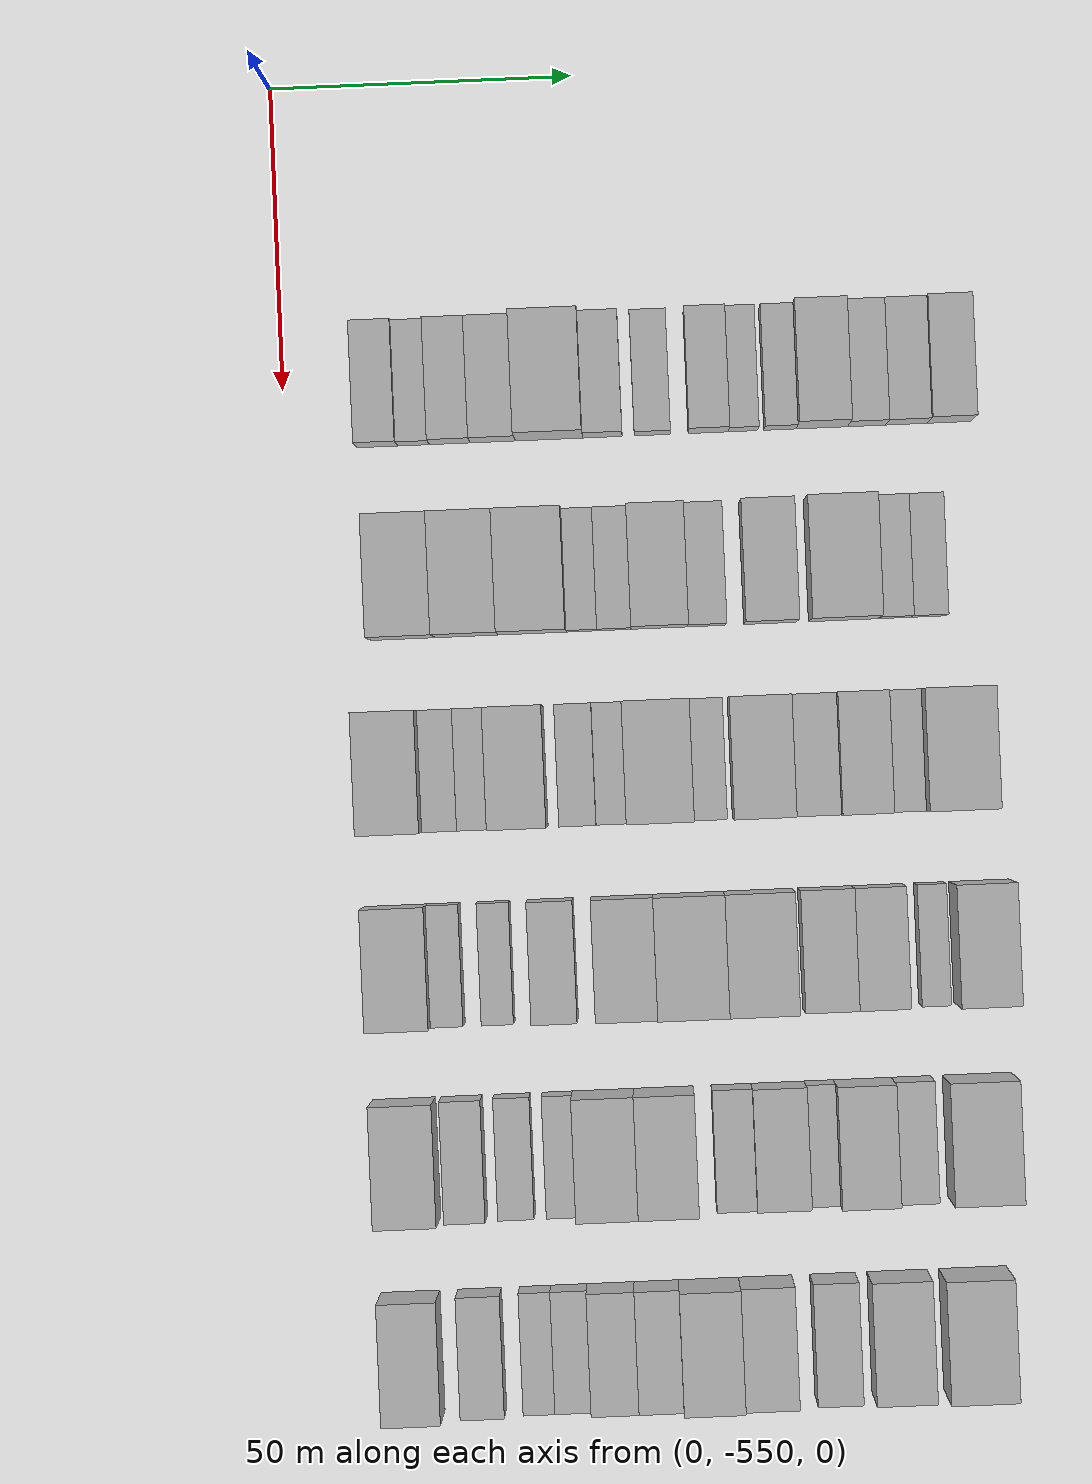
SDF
<sdf version="1.6">
 <world name="default">
  <model name="building_1">
   <static>1</static>
   <pose>50.0000 -534.6168 0 0.000000 0.000000 0.000000</pose>
   <link name="link">
    <pose>0 0 7.50 0 0 0</pose>
    <collision name="collision"><geometry><box><size>20.0000 6.7664 15.0000</size></box></geometry></collision>
    <visual name="visual">
     <cast_shadows>0</cast_shadows>
     <geometry><box><size>20.0000 6.7664 15.0000</size></box></geometry>
     <material>
      <script>
       <uri>model://HANNAS_wall/materials/scripts</uri>
       <uri>model://HANNAS_wall/materials/textures</uri>
       <name>vrc/HANNAS_wall</name>
      </script>
     </material>
    </visual>
   </link>
  </model>
  <model name="building_2">
   <static>1</static>
   <pose>50.0000 -528.6167 0 0.000000 0.000000 0.000000</pose>
   <link name="link">
    <pose>0 0 6.00 0 0 0</pose>
    <collision name="collision"><geometry><box><size>20.0000 5.2339 12.0000</size></box></geometry></collision>
    <visual name="visual">
     <cast_shadows>0</cast_shadows>
     <geometry><box><size>20.0000 5.2339 12.0000</size></box></geometry>
     <material>
      <script>
       <uri>model://HANNAS_wall/materials/scripts</uri>
       <uri>model://HANNAS_wall/materials/textures</uri>
       <name>vrc/HANNAS_wall</name>
      </script>
     </material>
    </visual>
   </link>
  </model>
  <model name="building_3">
   <static>1</static>
   <pose>50.0000 -522.6289 0 0.000000 0.000000 0.000000</pose>
   <link name="link">
    <pose>0 0 7.50 0 0 0</pose>
    <collision name="collision"><geometry><box><size>20.0000 6.7417 15.0000</size></box></geometry></collision>
    <visual name="visual">
     <cast_shadows>0</cast_shadows>
     <geometry><box><size>20.0000 6.7417 15.0000</size></box></geometry>
     <material>
      <script>
       <uri>model://HANNAS_wall/materials/scripts</uri>
       <uri>model://HANNAS_wall/materials/textures</uri>
       <name>vrc/HANNAS_wall</name>
      </script>
     </material>
    </visual>
   </link>
  </model>
  <model name="building_4">
   <static>1</static>
   <pose>50.0000 -515.5239 0 0.000000 0.000000 0.000000</pose>
   <link name="link">
    <pose>0 0 7.50 0 0 0</pose>
    <collision name="collision"><geometry><box><size>20.0000 7.4683 15.0000</size></box></geometry></collision>
    <visual name="visual">
     <cast_shadows>0</cast_shadows>
     <geometry><box><size>20.0000 7.4683 15.0000</size></box></geometry>
     <material>
      <script>
       <uri>model://HANNAS_wall/materials/scripts</uri>
       <uri>model://HANNAS_wall/materials/textures</uri>
       <name>vrc/HANNAS_wall</name>
      </script>
     </material>
    </visual>
   </link>
  </model>
  <model name="building_5">
   <static>1</static>
   <pose>50.0000 -506.2095 0 0.000000 0.000000 0.000000</pose>
   <link name="link">
    <pose>0 0 12.00 0 0 0</pose>
    <collision name="collision"><geometry><box><size>20.0000 11.1605 24.0000</size></box></geometry></collision>
    <visual name="visual">
     <cast_shadows>0</cast_shadows>
     <geometry><box><size>20.0000 11.1605 24.0000</size></box></geometry>
     <material>
      <script>
       <uri>model://HANNAS_wall/materials/scripts</uri>
       <uri>model://HANNAS_wall/materials/textures</uri>
       <name>vrc/HANNAS_wall</name>
      </script>
     </material>
    </visual>
   </link>
  </model>
  <model name="building_6">
   <static>1</static>
   <pose>50.0000 -497.3670 0 0.000000 0.000000 0.000000</pose>
   <link name="link">
    <pose>0 0 7.50 0 0 0</pose>
    <collision name="collision"><geometry><box><size>20.0000 6.5246 15.0000</size></box></geometry></collision>
    <visual name="visual">
     <cast_shadows>0</cast_shadows>
     <geometry><box><size>20.0000 6.5246 15.0000</size></box></geometry>
     <material>
      <script>
       <uri>model://HANNAS_wall/materials/scripts</uri>
       <uri>model://HANNAS_wall/materials/textures</uri>
       <name>vrc/HANNAS_wall</name>
      </script>
     </material>
    </visual>
   </link>
  </model>
  <model name="building_7">
   <static>1</static>
   <pose>50.0000 -489.1371 0 0.000000 0.000000 0.000000</pose>
   <link name="link">
    <pose>0 0 6.00 0 0 0</pose>
    <collision name="collision"><geometry><box><size>20.0000 5.9351 12.0000</size></box></geometry></collision>
    <visual name="visual">
     <cast_shadows>0</cast_shadows>
     <geometry><box><size>20.0000 5.9351 12.0000</size></box></geometry>
     <material>
      <script>
       <uri>model://HANNAS_wall/materials/scripts</uri>
       <uri>model://HANNAS_wall/materials/textures</uri>
       <name>vrc/HANNAS_wall</name>
      </script>
     </material>
    </visual>
   </link>
  </model>
  <model name="building_8">
   <static>1</static>
   <pose>50.0000 -479.8209 0 0.000000 0.000000 0.000000</pose>
   <link name="link">
    <pose>0 0 7.50 0 0 0</pose>
    <collision name="collision"><geometry><box><size>20.0000 6.6973 15.0000</size></box></geometry></collision>
    <visual name="visual">
     <cast_shadows>0</cast_shadows>
     <geometry><box><size>20.0000 6.6973 15.0000</size></box></geometry>
     <material>
      <script>
       <uri>model://HANNAS_wall/materials/scripts</uri>
       <uri>model://HANNAS_wall/materials/textures</uri>
       <name>vrc/HANNAS_wall</name>
      </script>
     </material>
    </visual>
   </link>
  </model>
  <model name="building_9">
   <static>1</static>
   <pose>50.0000 -474.0490 0 0.000000 0.000000 0.000000</pose>
   <link name="link">
    <pose>0 0 6.00 0 0 0</pose>
    <collision name="collision"><geometry><box><size>20.0000 4.8466 12.0000</size></box></geometry></collision>
    <visual name="visual">
     <cast_shadows>0</cast_shadows>
     <geometry><box><size>20.0000 4.8466 12.0000</size></box></geometry>
     <material>
      <script>
       <uri>model://HANNAS_wall/materials/scripts</uri>
       <uri>model://HANNAS_wall/materials/textures</uri>
       <name>vrc/HANNAS_wall</name>
      </script>
     </material>
    </visual>
   </link>
  </model>
  <model name="building_10">
   <static>1</static>
   <pose>50.0000 -467.9414 0 0.000000 0.000000 0.000000</pose>
   <link name="link">
    <pose>0 0 6.00 0 0 0</pose>
    <collision name="collision"><geometry><box><size>20.0000 5.3687 12.0000</size></box></geometry></collision>
    <visual name="visual">
     <cast_shadows>0</cast_shadows>
     <geometry><box><size>20.0000 5.3687 12.0000</size></box></geometry>
     <material>
      <script>
       <uri>model://HANNAS_wall/materials/scripts</uri>
       <uri>model://HANNAS_wall/materials/textures</uri>
       <name>vrc/HANNAS_wall</name>
      </script>
     </material>
    </visual>
   </link>
  </model>
  <model name="building_11">
   <static>1</static>
   <pose>50.0000 -460.9712 0 0.000000 0.000000 0.000000</pose>
   <link name="link">
    <pose>0 0 10.50 0 0 0</pose>
    <collision name="collision"><geometry><box><size>20.0000 8.5717 21.0000</size></box></geometry></collision>
    <visual name="visual">
     <cast_shadows>0</cast_shadows>
     <geometry><box><size>20.0000 8.5717 21.0000</size></box></geometry>
     <material>
      <script>
       <uri>model://HANNAS_wall/materials/scripts</uri>
       <uri>model://HANNAS_wall/materials/textures</uri>
       <name>vrc/HANNAS_wall</name>
      </script>
     </material>
    </visual>
   </link>
  </model>
  <model name="building_12">
   <static>1</static>
   <pose>50.0000 -453.5250 0 0.000000 0.000000 0.000000</pose>
   <link name="link">
    <pose>0 0 7.50 0 0 0</pose>
    <collision name="collision"><geometry><box><size>20.0000 6.3207 15.0000</size></box></geometry></collision>
    <visual name="visual">
     <cast_shadows>0</cast_shadows>
     <geometry><box><size>20.0000 6.3207 15.0000</size></box></geometry>
     <material>
      <script>
       <uri>model://HANNAS_wall/materials/scripts</uri>
       <uri>model://HANNAS_wall/materials/textures</uri>
       <name>vrc/HANNAS_wall</name>
      </script>
     </material>
    </visual>
   </link>
  </model>
  <model name="building_13">
   <static>1</static>
   <pose>50.0000 -446.9261 0 0.000000 0.000000 0.000000</pose>
   <link name="link">
    <pose>0 0 7.50 0 0 0</pose>
    <collision name="collision"><geometry><box><size>20.0000 6.8771 15.0000</size></box></geometry></collision>
    <visual name="visual">
     <cast_shadows>0</cast_shadows>
     <geometry><box><size>20.0000 6.8771 15.0000</size></box></geometry>
     <material>
      <script>
       <uri>model://HANNAS_wall/materials/scripts</uri>
       <uri>model://HANNAS_wall/materials/textures</uri>
       <name>vrc/HANNAS_wall</name>
      </script>
     </material>
    </visual>
   </link>
  </model>
  <model name="building_14">
   <static>1</static>
   <pose>50.0000 -439.8316 0 0.000000 0.000000 0.000000</pose>
   <link name="link">
    <pose>0 0 9.00 0 0 0</pose>
    <collision name="collision"><geometry><box><size>20.0000 7.3120 18.0000</size></box></geometry></collision>
    <visual name="visual">
     <cast_shadows>0</cast_shadows>
     <geometry><box><size>20.0000 7.3120 18.0000</size></box></geometry>
     <material>
      <script>
       <uri>model://HANNAS_wall/materials/scripts</uri>
       <uri>model://HANNAS_wall/materials/textures</uri>
       <name>vrc/HANNAS_wall</name>
      </script>
     </material>
    </visual>
   </link>
  </model>
  <model name="building_113">
   <static>1</static>
   <pose>82.0000 -531.7227 0 0.000000 0.000000 0.000000</pose>
   <link name="link">
    <pose>0 0 12.00 0 0 0</pose>
    <collision name="collision"><geometry><box><size>20.0000 10.5547 24.0000</size></box></geometry></collision>
    <visual name="visual">
     <cast_shadows>0</cast_shadows>
     <geometry><box><size>20.0000 10.5547 24.0000</size></box></geometry>
     <material>
      <script>
       <uri>model://HANNAS_wall/materials/scripts</uri>
       <uri>model://HANNAS_wall/materials/textures</uri>
       <name>vrc/HANNAS_wall</name>
      </script>
     </material>
    </visual>
   </link>
  </model>
  <model name="building_114">
   <static>1</static>
   <pose>82.0000 -521.1685 0 0.000000 0.000000 0.000000</pose>
   <link name="link">
    <pose>0 0 12.00 0 0 0</pose>
    <collision name="collision"><geometry><box><size>20.0000 10.5536 24.0000</size></box></geometry></collision>
    <visual name="visual">
     <cast_shadows>0</cast_shadows>
     <geometry><box><size>20.0000 10.5536 24.0000</size></box></geometry>
     <material>
      <script>
       <uri>model://HANNAS_wall/materials/scripts</uri>
       <uri>model://HANNAS_wall/materials/textures</uri>
       <name>vrc/HANNAS_wall</name>
      </script>
     </material>
    </visual>
   </link>
  </model>
  <model name="building_115">
   <static>1</static>
   <pose>82.0000 -510.2709 0 0.000000 0.000000 0.000000</pose>
   <link name="link">
    <pose>0 0 12.00 0 0 0</pose>
    <collision name="collision"><geometry><box><size>20.0000 11.2416 24.0000</size></box></geometry></collision>
    <visual name="visual">
     <cast_shadows>0</cast_shadows>
     <geometry><box><size>20.0000 11.2416 24.0000</size></box></geometry>
     <material>
      <script>
       <uri>model://HANNAS_wall/materials/scripts</uri>
       <uri>model://HANNAS_wall/materials/textures</uri>
       <name>vrc/HANNAS_wall</name>
      </script>
     </material>
    </visual>
   </link>
  </model>
  <model name="building_116">
   <static>1</static>
   <pose>82.0000 -502.1303 0 0.000000 0.000000 0.000000</pose>
   <link name="link">
    <pose>0 0 6.00 0 0 0</pose>
    <collision name="collision"><geometry><box><size>20.0000 5.0396 12.0000</size></box></geometry></collision>
    <visual name="visual">
     <cast_shadows>0</cast_shadows>
     <geometry><box><size>20.0000 5.0396 12.0000</size></box></geometry>
     <material>
      <script>
       <uri>model://HANNAS_wall/materials/scripts</uri>
       <uri>model://HANNAS_wall/materials/textures</uri>
       <name>vrc/HANNAS_wall</name>
      </script>
     </material>
    </visual>
   </link>
  </model>
  <model name="building_117">
   <static>1</static>
   <pose>82.0000 -496.8049 0 0.000000 0.000000 0.000000</pose>
   <link name="link">
    <pose>0 0 6.00 0 0 0</pose>
    <collision name="collision"><geometry><box><size>20.0000 5.6114 12.0000</size></box></geometry></collision>
    <visual name="visual">
     <cast_shadows>0</cast_shadows>
     <geometry><box><size>20.0000 5.6114 12.0000</size></box></geometry>
     <material>
      <script>
       <uri>model://HANNAS_wall/materials/scripts</uri>
       <uri>model://HANNAS_wall/materials/textures</uri>
       <name>vrc/HANNAS_wall</name>
      </script>
     </material>
    </visual>
   </link>
  </model>
  <model name="building_118">
   <static>1</static>
   <pose>82.0000 -489.3144 0 0.000000 0.000000 0.000000</pose>
   <link name="link">
    <pose>0 0 10.50 0 0 0</pose>
    <collision name="collision"><geometry><box><size>20.0000 9.3695 21.0000</size></box></geometry></collision>
    <visual name="visual">
     <cast_shadows>0</cast_shadows>
     <geometry><box><size>20.0000 9.3695 21.0000</size></box></geometry>
     <material>
      <script>
       <uri>model://HANNAS_wall/materials/scripts</uri>
       <uri>model://HANNAS_wall/materials/textures</uri>
       <name>vrc/HANNAS_wall</name>
      </script>
     </material>
    </visual>
   </link>
  </model>
  <model name="building_119">
   <static>1</static>
   <pose>82.0000 -481.4754 0 0.000000 0.000000 0.000000</pose>
   <link name="link">
    <pose>0 0 7.50 0 0 0</pose>
    <collision name="collision"><geometry><box><size>20.0000 6.3085 15.0000</size></box></geometry></collision>
    <visual name="visual">
     <cast_shadows>0</cast_shadows>
     <geometry><box><size>20.0000 6.3085 15.0000</size></box></geometry>
     <material>
      <script>
       <uri>model://HANNAS_wall/materials/scripts</uri>
       <uri>model://HANNAS_wall/materials/textures</uri>
       <name>vrc/HANNAS_wall</name>
      </script>
     </material>
    </visual>
   </link>
  </model>
  <model name="building_120">
   <static>1</static>
   <pose>82.0000 -470.9558 0 0.000000 0.000000 0.000000</pose>
   <link name="link">
    <pose>0 0 10.50 0 0 0</pose>
    <collision name="collision"><geometry><box><size>20.0000 8.7308 21.0000</size></box></geometry></collision>
    <visual name="visual">
     <cast_shadows>0</cast_shadows>
     <geometry><box><size>20.0000 8.7308 21.0000</size></box></geometry>
     <material>
      <script>
       <uri>model://HANNAS_wall/materials/scripts</uri>
       <uri>model://HANNAS_wall/materials/textures</uri>
       <name>vrc/HANNAS_wall</name>
      </script>
     </material>
    </visual>
   </link>
  </model>
  <model name="building_121">
   <static>1</static>
   <pose>82.0000 -458.8584 0 0.000000 0.000000 0.000000</pose>
   <link name="link">
    <pose>0 0 12.00 0 0 0</pose>
    <collision name="collision"><geometry><box><size>20.0000 11.4640 24.0000</size></box></geometry></collision>
    <visual name="visual">
     <cast_shadows>0</cast_shadows>
     <geometry><box><size>20.0000 11.4640 24.0000</size></box></geometry>
     <material>
      <script>
       <uri>model://HANNAS_wall/materials/scripts</uri>
       <uri>model://HANNAS_wall/materials/textures</uri>
       <name>vrc/HANNAS_wall</name>
      </script>
     </material>
    </visual>
   </link>
  </model>
  <model name="building_122">
   <static>1</static>
   <pose>82.0000 -450.3639 0 0.000000 0.000000 0.000000</pose>
   <link name="link">
    <pose>0 0 6.00 0 0 0</pose>
    <collision name="collision"><geometry><box><size>20.0000 5.5251 12.0000</size></box></geometry></collision>
    <visual name="visual">
     <cast_shadows>0</cast_shadows>
     <geometry><box><size>20.0000 5.5251 12.0000</size></box></geometry>
     <material>
      <script>
       <uri>model://HANNAS_wall/materials/scripts</uri>
       <uri>model://HANNAS_wall/materials/textures</uri>
       <name>vrc/HANNAS_wall</name>
      </script>
     </material>
    </visual>
   </link>
  </model>
  <model name="building_123">
   <static>1</static>
   <pose>82.0000 -444.7693 0 0.000000 0.000000 0.000000</pose>
   <link name="link">
    <pose>0 0 6.00 0 0 0</pose>
    <collision name="collision"><geometry><box><size>20.0000 5.6641 12.0000</size></box></geometry></collision>
    <visual name="visual">
     <cast_shadows>0</cast_shadows>
     <geometry><box><size>20.0000 5.6641 12.0000</size></box></geometry>
     <material>
      <script>
       <uri>model://HANNAS_wall/materials/scripts</uri>
       <uri>model://HANNAS_wall/materials/textures</uri>
       <name>vrc/HANNAS_wall</name>
      </script>
     </material>
    </visual>
   </link>
  </model>
  <model name="building_238">
   <static>1</static>
   <pose>114.0000 -534.8108 0 0.000000 0.000000 0.000000</pose>
   <link name="link">
    <pose>0 0 12.00 0 0 0</pose>
    <collision name="collision"><geometry><box><size>20.0000 10.3784 24.0000</size></box></geometry></collision>
    <visual name="visual">
     <cast_shadows>0</cast_shadows>
     <geometry><box><size>20.0000 10.3784 24.0000</size></box></geometry>
     <material>
      <script>
       <uri>model://HANNAS_wall/materials/scripts</uri>
       <uri>model://HANNAS_wall/materials/textures</uri>
       <name>vrc/HANNAS_wall</name>
      </script>
     </material>
    </visual>
   </link>
  </model>
  <model name="building_239">
   <static>1</static>
   <pose>114.0000 -526.7624 0 0.000000 0.000000 0.000000</pose>
   <link name="link">
    <pose>0 0 6.00 0 0 0</pose>
    <collision name="collision"><geometry><box><size>20.0000 5.7185 12.0000</size></box></geometry></collision>
    <visual name="visual">
     <cast_shadows>0</cast_shadows>
     <geometry><box><size>20.0000 5.7185 12.0000</size></box></geometry>
     <material>
      <script>
       <uri>model://HANNAS_wall/materials/scripts</uri>
       <uri>model://HANNAS_wall/materials/textures</uri>
       <name>vrc/HANNAS_wall</name>
      </script>
     </material>
    </visual>
   </link>
  </model>
  <model name="building_240">
   <static>1</static>
   <pose>114.0000 -521.3379 0 0.000000 0.000000 0.000000</pose>
   <link name="link">
    <pose>0 0 6.00 0 0 0</pose>
    <collision name="collision"><geometry><box><size>20.0000 5.1304 12.0000</size></box></geometry></collision>
    <visual name="visual">
     <cast_shadows>0</cast_shadows>
     <geometry><box><size>20.0000 5.1304 12.0000</size></box></geometry>
     <material>
      <script>
       <uri>model://HANNAS_wall/materials/scripts</uri>
       <uri>model://HANNAS_wall/materials/textures</uri>
       <name>vrc/HANNAS_wall</name>
      </script>
     </material>
    </visual>
   </link>
  </model>
  <model name="building_241">
   <static>1</static>
   <pose>114.0000 -513.9491 0 0.000000 0.000000 0.000000</pose>
   <link name="link">
    <pose>0 0 10.50 0 0 0</pose>
    <collision name="collision"><geometry><box><size>20.0000 9.6472 21.0000</size></box></geometry></collision>
    <visual name="visual">
     <cast_shadows>0</cast_shadows>
     <geometry><box><size>20.0000 9.6472 21.0000</size></box></geometry>
     <material>
      <script>
       <uri>model://HANNAS_wall/materials/scripts</uri>
       <uri>model://HANNAS_wall/materials/textures</uri>
       <name>vrc/HANNAS_wall</name>
      </script>
     </material>
    </visual>
   </link>
  </model>
  <model name="building_242">
   <static>1</static>
   <pose>114.0000 -504.1001 0 0.000000 0.000000 0.000000</pose>
   <link name="link">
    <pose>0 0 7.50 0 0 0</pose>
    <collision name="collision"><geometry><box><size>20.0000 6.0510 15.0000</size></box></geometry></collision>
    <visual name="visual">
     <cast_shadows>0</cast_shadows>
     <geometry><box><size>20.0000 6.0510 15.0000</size></box></geometry>
     <material>
      <script>
       <uri>model://HANNAS_wall/materials/scripts</uri>
       <uri>model://HANNAS_wall/materials/textures</uri>
       <name>vrc/HANNAS_wall</name>
      </script>
     </material>
    </visual>
   </link>
  </model>
  <model name="building_243">
   <static>1</static>
   <pose>114.0000 -498.5882 0 0.000000 0.000000 0.000000</pose>
   <link name="link">
    <pose>0 0 6.00 0 0 0</pose>
    <collision name="collision"><geometry><box><size>20.0000 4.9729 12.0000</size></box></geometry></collision>
    <visual name="visual">
     <cast_shadows>0</cast_shadows>
     <geometry><box><size>20.0000 4.9729 12.0000</size></box></geometry>
     <material>
      <script>
       <uri>model://HANNAS_wall/materials/scripts</uri>
       <uri>model://HANNAS_wall/materials/textures</uri>
       <name>vrc/HANNAS_wall</name>
      </script>
     </material>
    </visual>
   </link>
  </model>
  <model name="building_244">
   <static>1</static>
   <pose>114.0000 -490.5929 0 0.000000 0.000000 0.000000</pose>
   <link name="link">
    <pose>0 0 12.00 0 0 0</pose>
    <collision name="collision"><geometry><box><size>20.0000 11.0177 24.0000</size></box></geometry></collision>
    <visual name="visual">
     <cast_shadows>0</cast_shadows>
     <geometry><box><size>20.0000 11.0177 24.0000</size></box></geometry>
     <material>
      <script>
       <uri>model://HANNAS_wall/materials/scripts</uri>
       <uri>model://HANNAS_wall/materials/textures</uri>
       <name>vrc/HANNAS_wall</name>
      </script>
     </material>
    </visual>
   </link>
  </model>
  <model name="building_245">
   <static>1</static>
   <pose>114.0000 -482.3279 0 0.000000 0.000000 0.000000</pose>
   <link name="link">
    <pose>0 0 6.00 0 0 0</pose>
    <collision name="collision"><geometry><box><size>20.0000 5.5122 12.0000</size></box></geometry></collision>
    <visual name="visual">
     <cast_shadows>0</cast_shadows>
     <geometry><box><size>20.0000 5.5122 12.0000</size></box></geometry>
     <material>
      <script>
       <uri>model://HANNAS_wall/materials/scripts</uri>
       <uri>model://HANNAS_wall/materials/textures</uri>
       <name>vrc/HANNAS_wall</name>
      </script>
     </material>
    </visual>
   </link>
  </model>
  <model name="building_246">
   <static>1</static>
   <pose>114.0000 -473.4891 0 0.000000 0.000000 0.000000</pose>
   <link name="link">
    <pose>0 0 10.50 0 0 0</pose>
    <collision name="collision"><geometry><box><size>20.0000 10.1655 21.0000</size></box></geometry></collision>
    <visual name="visual">
     <cast_shadows>0</cast_shadows>
     <geometry><box><size>20.0000 10.1655 21.0000</size></box></geometry>
     <material>
      <script>
       <uri>model://HANNAS_wall/materials/scripts</uri>
       <uri>model://HANNAS_wall/materials/textures</uri>
       <name>vrc/HANNAS_wall</name>
      </script>
     </material>
    </visual>
   </link>
  </model>
  <model name="building_247">
   <static>1</static>
   <pose>114.0000 -464.6947 0 0.000000 0.000000 0.000000</pose>
   <link name="link">
    <pose>0 0 7.50 0 0 0</pose>
    <collision name="collision"><geometry><box><size>20.0000 7.4234 15.0000</size></box></geometry></collision>
    <visual name="visual">
     <cast_shadows>0</cast_shadows>
     <geometry><box><size>20.0000 7.4234 15.0000</size></box></geometry>
     <material>
      <script>
       <uri>model://HANNAS_wall/materials/scripts</uri>
       <uri>model://HANNAS_wall/materials/textures</uri>
       <name>vrc/HANNAS_wall</name>
      </script>
     </material>
    </visual>
   </link>
  </model>
  <model name="building_248">
   <static>1</static>
   <pose>114.0000 -456.7789 0 0.000000 0.000000 0.000000</pose>
   <link name="link">
    <pose>0 0 10.50 0 0 0</pose>
    <collision name="collision"><geometry><box><size>20.0000 8.4082 21.0000</size></box></geometry></collision>
    <visual name="visual">
     <cast_shadows>0</cast_shadows>
     <geometry><box><size>20.0000 8.4082 21.0000</size></box></geometry>
     <material>
      <script>
       <uri>model://HANNAS_wall/materials/scripts</uri>
       <uri>model://HANNAS_wall/materials/textures</uri>
       <name>vrc/HANNAS_wall</name>
      </script>
     </material>
    </visual>
   </link>
  </model>
  <model name="building_249">
   <static>1</static>
   <pose>114.0000 -449.7888 0 0.000000 0.000000 0.000000</pose>
   <link name="link">
    <pose>0 0 6.00 0 0 0</pose>
    <collision name="collision"><geometry><box><size>20.0000 5.5721 12.0000</size></box></geometry></collision>
    <visual name="visual">
     <cast_shadows>0</cast_shadows>
     <geometry><box><size>20.0000 5.5721 12.0000</size></box></geometry>
     <material>
      <script>
       <uri>model://HANNAS_wall/materials/scripts</uri>
       <uri>model://HANNAS_wall/materials/textures</uri>
       <name>vrc/HANNAS_wall</name>
      </script>
     </material>
    </visual>
   </link>
  </model>
  <model name="building_250">
   <static>1</static>
   <pose>114.0000 -441.1961 0 0.000000 0.000000 0.000000</pose>
   <link name="link">
    <pose>0 0 12.00 0 0 0</pose>
    <collision name="collision"><geometry><box><size>20.0000 11.6133 24.0000</size></box></geometry></collision>
    <visual name="visual">
     <cast_shadows>0</cast_shadows>
     <geometry><box><size>20.0000 11.6133 24.0000</size></box></geometry>
     <material>
      <script>
       <uri>model://HANNAS_wall/materials/scripts</uri>
       <uri>model://HANNAS_wall/materials/textures</uri>
       <name>vrc/HANNAS_wall</name>
      </script>
     </material>
    </visual>
   </link>
  </model>
  <model name="building_361">
   <static>1</static>
   <pose>146.0000 -534.7882 0 0.000000 0.000000 0.000000</pose>
   <link name="link">
    <pose>0 0 10.50 0 0 0</pose>
    <collision name="collision"><geometry><box><size>20.0000 10.4236 21.0000</size></box></geometry></collision>
    <visual name="visual">
     <cast_shadows>0</cast_shadows>
     <geometry><box><size>20.0000 10.4236 21.0000</size></box></geometry>
     <material>
      <script>
       <uri>model://HANNAS_wall/materials/scripts</uri>
       <uri>model://HANNAS_wall/materials/textures</uri>
       <name>vrc/HANNAS_wall</name>
      </script>
     </material>
    </visual>
   </link>
  </model>
  <model name="building_362">
   <static>1</static>
   <pose>146.0000 -526.9096 0 0.000000 0.000000 0.000000</pose>
   <link name="link">
    <pose>0 0 6.00 0 0 0</pose>
    <collision name="collision"><geometry><box><size>20.0000 5.3336 12.0000</size></box></geometry></collision>
    <visual name="visual">
     <cast_shadows>0</cast_shadows>
     <geometry><box><size>20.0000 5.3336 12.0000</size></box></geometry>
     <material>
      <script>
       <uri>model://HANNAS_wall/materials/scripts</uri>
       <uri>model://HANNAS_wall/materials/textures</uri>
       <name>vrc/HANNAS_wall</name>
      </script>
     </material>
    </visual>
   </link>
  </model>
  <model name="building_363">
   <static>1</static>
   <pose>146.0000 -518.6073 0 0.000000 0.000000 0.000000</pose>
   <link name="link">
    <pose>0 0 6.00 0 0 0</pose>
    <collision name="collision"><geometry><box><size>20.0000 5.2710 12.0000</size></box></geometry></collision>
    <visual name="visual">
     <cast_shadows>0</cast_shadows>
     <geometry><box><size>20.0000 5.2710 12.0000</size></box></geometry>
     <material>
      <script>
       <uri>model://HANNAS_wall/materials/scripts</uri>
       <uri>model://HANNAS_wall/materials/textures</uri>
       <name>vrc/HANNAS_wall</name>
      </script>
     </material>
    </visual>
   </link>
  </model>
  <model name="building_364">
   <static>1</static>
   <pose>146.0000 -509.2248 0 0.000000 0.000000 0.000000</pose>
   <link name="link">
    <pose>0 0 9.00 0 0 0</pose>
    <collision name="collision"><geometry><box><size>20.0000 7.4940 18.0000</size></box></geometry></collision>
    <visual name="visual">
     <cast_shadows>0</cast_shadows>
     <geometry><box><size>20.0000 7.4940 18.0000</size></box></geometry>
     <material>
      <script>
       <uri>model://HANNAS_wall/materials/scripts</uri>
       <uri>model://HANNAS_wall/materials/textures</uri>
       <name>vrc/HANNAS_wall</name>
      </script>
     </material>
    </visual>
   </link>
  </model>
  <model name="building_365">
   <static>1</static>
   <pose>146.0000 -497.4205 0 0.000000 0.000000 0.000000</pose>
   <link name="link">
    <pose>0 0 10.50 0 0 0</pose>
    <collision name="collision"><geometry><box><size>20.0000 10.1145 21.0000</size></box></geometry></collision>
    <visual name="visual">
     <cast_shadows>0</cast_shadows>
     <geometry><box><size>20.0000 10.1145 21.0000</size></box></geometry>
     <material>
      <script>
       <uri>model://HANNAS_wall/materials/scripts</uri>
       <uri>model://HANNAS_wall/materials/textures</uri>
       <name>vrc/HANNAS_wall</name>
      </script>
     </material>
    </visual>
   </link>
  </model>
  <model name="building_366">
   <static>1</static>
   <pose>146.0000 -486.5236 0 0.000000 0.000000 0.000000</pose>
   <link name="link">
    <pose>0 0 12.00 0 0 0</pose>
    <collision name="collision"><geometry><box><size>20.0000 11.6794 24.0000</size></box></geometry></collision>
    <visual name="visual">
     <cast_shadows>0</cast_shadows>
     <geometry><box><size>20.0000 11.6794 24.0000</size></box></geometry>
     <material>
      <script>
       <uri>model://HANNAS_wall/materials/scripts</uri>
       <uri>model://HANNAS_wall/materials/textures</uri>
       <name>vrc/HANNAS_wall</name>
      </script>
     </material>
    </visual>
   </link>
  </model>
  <model name="building_367">
   <static>1</static>
   <pose>146.0000 -474.9868 0 0.000000 0.000000 0.000000</pose>
   <link name="link">
    <pose>0 0 12.00 0 0 0</pose>
    <collision name="collision"><geometry><box><size>20.0000 11.3943 24.0000</size></box></geometry></collision>
    <visual name="visual">
     <cast_shadows>0</cast_shadows>
     <geometry><box><size>20.0000 11.3943 24.0000</size></box></geometry>
     <material>
      <script>
       <uri>model://HANNAS_wall/materials/scripts</uri>
       <uri>model://HANNAS_wall/materials/textures</uri>
       <name>vrc/HANNAS_wall</name>
      </script>
     </material>
    </visual>
   </link>
  </model>
  <model name="building_368">
   <static>1</static>
   <pose>146.0000 -463.8695 0 0.000000 0.000000 0.000000</pose>
   <link name="link">
    <pose>0 0 9.00 0 0 0</pose>
    <collision name="collision"><geometry><box><size>20.0000 8.8402 18.0000</size></box></geometry></collision>
    <visual name="visual">
     <cast_shadows>0</cast_shadows>
     <geometry><box><size>20.0000 8.8402 18.0000</size></box></geometry>
     <material>
      <script>
       <uri>model://HANNAS_wall/materials/scripts</uri>
       <uri>model://HANNAS_wall/materials/textures</uri>
       <name>vrc/HANNAS_wall</name>
      </script>
     </material>
    </visual>
   </link>
  </model>
  <model name="building_369">
   <static>1</static>
   <pose>146.0000 -455.2530 0 0.000000 0.000000 0.000000</pose>
   <link name="link">
    <pose>0 0 9.00 0 0 0</pose>
    <collision name="collision"><geometry><box><size>20.0000 8.3929 18.0000</size></box></geometry></collision>
    <visual name="visual">
     <cast_shadows>0</cast_shadows>
     <geometry><box><size>20.0000 8.3929 18.0000</size></box></geometry>
     <material>
      <script>
       <uri>model://HANNAS_wall/materials/scripts</uri>
       <uri>model://HANNAS_wall/materials/textures</uri>
       <name>vrc/HANNAS_wall</name>
      </script>
     </material>
    </visual>
   </link>
  </model>
  <model name="building_370">
   <static>1</static>
   <pose>146.0000 -446.6479 0 0.000000 0.000000 0.000000</pose>
   <link name="link">
    <pose>0 0 6.00 0 0 0</pose>
    <collision name="collision"><geometry><box><size>20.0000 4.8174 12.0000</size></box></geometry></collision>
    <visual name="visual">
     <cast_shadows>0</cast_shadows>
     <geometry><box><size>20.0000 4.8174 12.0000</size></box></geometry>
     <material>
      <script>
       <uri>model://HANNAS_wall/materials/scripts</uri>
       <uri>model://HANNAS_wall/materials/textures</uri>
       <name>vrc/HANNAS_wall</name>
      </script>
     </material>
    </visual>
   </link>
  </model>
  <model name="building_371">
   <static>1</static>
   <pose>146.0000 -438.2856 0 0.000000 0.000000 0.000000</pose>
   <link name="link">
    <pose>0 0 12.00 0 0 0</pose>
    <collision name="collision"><geometry><box><size>20.0000 9.9073 24.0000</size></box></geometry></collision>
    <visual name="visual">
     <cast_shadows>0</cast_shadows>
     <geometry><box><size>20.0000 9.9073 24.0000</size></box></geometry>
     <material>
      <script>
       <uri>model://HANNAS_wall/materials/scripts</uri>
       <uri>model://HANNAS_wall/materials/textures</uri>
       <name>vrc/HANNAS_wall</name>
      </script>
     </material>
    </visual>
   </link>
  </model>
  <model name="building_484">
   <static>1</static>
   <pose>178.0000 -534.8293 0 0.000000 0.000000 0.000000</pose>
   <link name="link">
    <pose>0 0 10.50 0 0 0</pose>
    <collision name="collision"><geometry><box><size>20.0000 10.3414 21.0000</size></box></geometry></collision>
    <visual name="visual">
     <cast_shadows>0</cast_shadows>
     <geometry><box><size>20.0000 10.3414 21.0000</size></box></geometry>
     <material>
      <script>
       <uri>model://HANNAS_wall/materials/scripts</uri>
       <uri>model://HANNAS_wall/materials/textures</uri>
       <name>vrc/HANNAS_wall</name>
      </script>
     </material>
    </visual>
   </link>
  </model>
  <model name="building_485">
   <static>1</static>
   <pose>178.0000 -525.2825 0 0.000000 0.000000 0.000000</pose>
   <link name="link">
    <pose>0 0 7.50 0 0 0</pose>
    <collision name="collision"><geometry><box><size>20.0000 6.7522 15.0000</size></box></geometry></collision>
    <visual name="visual">
     <cast_shadows>0</cast_shadows>
     <geometry><box><size>20.0000 6.7522 15.0000</size></box></geometry>
     <material>
      <script>
       <uri>model://HANNAS_wall/materials/scripts</uri>
       <uri>model://HANNAS_wall/materials/textures</uri>
       <name>vrc/HANNAS_wall</name>
      </script>
     </material>
    </visual>
   </link>
  </model>
  <model name="building_486">
   <static>1</static>
   <pose>178.0000 -516.9330 0 0.000000 0.000000 0.000000</pose>
   <link name="link">
    <pose>0 0 6.00 0 0 0</pose>
    <collision name="collision"><geometry><box><size>20.0000 5.9466 12.0000</size></box></geometry></collision>
    <visual name="visual">
     <cast_shadows>0</cast_shadows>
     <geometry><box><size>20.0000 5.9466 12.0000</size></box></geometry>
     <material>
      <script>
       <uri>model://HANNAS_wall/materials/scripts</uri>
       <uri>model://HANNAS_wall/materials/textures</uri>
       <name>vrc/HANNAS_wall</name>
      </script>
     </material>
    </visual>
   </link>
  </model>
  <model name="building_487">
   <static>1</static>
   <pose>178.0000 -509.4735 0 0.000000 0.000000 0.000000</pose>
   <link name="link">
    <pose>0 0 6.00 0 0 0</pose>
    <collision name="collision"><geometry><box><size>20.0000 4.9723 12.0000</size></box></geometry></collision>
    <visual name="visual">
     <cast_shadows>0</cast_shadows>
     <geometry><box><size>20.0000 4.9723 12.0000</size></box></geometry>
     <material>
      <script>
       <uri>model://HANNAS_wall/materials/scripts</uri>
       <uri>model://HANNAS_wall/materials/textures</uri>
       <name>vrc/HANNAS_wall</name>
      </script>
     </material>
    </visual>
   </link>
  </model>
  <model name="building_488">
   <static>1</static>
   <pose>178.0000 -501.9468 0 0.000000 0.000000 0.000000</pose>
   <link name="link">
    <pose>0 0 12.00 0 0 0</pose>
    <collision name="collision"><geometry><box><size>20.0000 10.0813 24.0000</size></box></geometry></collision>
    <visual name="visual">
     <cast_shadows>0</cast_shadows>
     <geometry><box><size>20.0000 10.0813 24.0000</size></box></geometry>
     <material>
      <script>
       <uri>model://HANNAS_wall/materials/scripts</uri>
       <uri>model://HANNAS_wall/materials/textures</uri>
       <name>vrc/HANNAS_wall</name>
      </script>
     </material>
    </visual>
   </link>
  </model>
  <model name="building_489">
   <static>1</static>
   <pose>178.0000 -491.9603 0 0.000000 0.000000 0.000000</pose>
   <link name="link">
    <pose>0 0 12.00 0 0 0</pose>
    <collision name="collision"><geometry><box><size>20.0000 9.8917 24.0000</size></box></geometry></collision>
    <visual name="visual">
     <cast_shadows>0</cast_shadows>
     <geometry><box><size>20.0000 9.8917 24.0000</size></box></geometry>
     <material>
      <script>
       <uri>model://HANNAS_wall/materials/scripts</uri>
       <uri>model://HANNAS_wall/materials/textures</uri>
       <name>vrc/HANNAS_wall</name>
      </script>
     </material>
    </visual>
   </link>
  </model>
  <model name="building_490">
   <static>1</static>
   <pose>178.0000 -480.7331 0 0.000000 0.000000 0.000000</pose>
   <link name="link">
    <pose>0 0 7.50 0 0 0</pose>
    <collision name="collision"><geometry><box><size>20.0000 6.5625 15.0000</size></box></geometry></collision>
    <visual name="visual">
     <cast_shadows>0</cast_shadows>
     <geometry><box><size>20.0000 6.5625 15.0000</size></box></geometry>
     <material>
      <script>
       <uri>model://HANNAS_wall/materials/scripts</uri>
       <uri>model://HANNAS_wall/materials/textures</uri>
       <name>vrc/HANNAS_wall</name>
      </script>
     </material>
    </visual>
   </link>
  </model>
  <model name="building_491">
   <static>1</static>
   <pose>178.0000 -473.0125 0 0.000000 0.000000 0.000000</pose>
   <link name="link">
    <pose>0 0 9.00 0 0 0</pose>
    <collision name="collision"><geometry><box><size>20.0000 8.8787 18.0000</size></box></geometry></collision>
    <visual name="visual">
     <cast_shadows>0</cast_shadows>
     <geometry><box><size>20.0000 8.8787 18.0000</size></box></geometry>
     <material>
      <script>
       <uri>model://HANNAS_wall/materials/scripts</uri>
       <uri>model://HANNAS_wall/materials/textures</uri>
       <name>vrc/HANNAS_wall</name>
      </script>
     </material>
    </visual>
   </link>
  </model>
  <model name="building_492">
   <static>1</static>
   <pose>178.0000 -466.1652 0 0.000000 0.000000 0.000000</pose>
   <link name="link">
    <pose>0 0 6.00 0 0 0</pose>
    <collision name="collision"><geometry><box><size>20.0000 4.8160 12.0000</size></box></geometry></collision>
    <visual name="visual">
     <cast_shadows>0</cast_shadows>
     <geometry><box><size>20.0000 4.8160 12.0000</size></box></geometry>
     <material>
      <script>
       <uri>model://HANNAS_wall/materials/scripts</uri>
       <uri>model://HANNAS_wall/materials/textures</uri>
       <name>vrc/HANNAS_wall</name>
      </script>
     </material>
    </visual>
   </link>
  </model>
  <model name="building_493">
   <static>1</static>
   <pose>178.0000 -458.9534 0 0.000000 0.000000 0.000000</pose>
   <link name="link">
    <pose>0 0 10.50 0 0 0</pose>
    <collision name="collision"><geometry><box><size>20.0000 9.6075 21.0000</size></box></geometry></collision>
    <visual name="visual">
     <cast_shadows>0</cast_shadows>
     <geometry><box><size>20.0000 9.6075 21.0000</size></box></geometry>
     <material>
      <script>
       <uri>model://HANNAS_wall/materials/scripts</uri>
       <uri>model://HANNAS_wall/materials/textures</uri>
       <name>vrc/HANNAS_wall</name>
      </script>
     </material>
    </visual>
   </link>
  </model>
  <model name="building_494">
   <static>1</static>
   <pose>178.0000 -450.9052 0 0.000000 0.000000 0.000000</pose>
   <link name="link">
    <pose>0 0 7.50 0 0 0</pose>
    <collision name="collision"><geometry><box><size>20.0000 6.4890 15.0000</size></box></geometry></collision>
    <visual name="visual">
     <cast_shadows>0</cast_shadows>
     <geometry><box><size>20.0000 6.4890 15.0000</size></box></geometry>
     <material>
      <script>
       <uri>model://HANNAS_wall/materials/scripts</uri>
       <uri>model://HANNAS_wall/materials/textures</uri>
       <name>vrc/HANNAS_wall</name>
      </script>
     </material>
    </visual>
   </link>
  </model>
  <model name="building_495">
   <static>1</static>
   <pose>178.0000 -439.9716 0 0.000000 0.000000 0.000000</pose>
   <link name="link">
    <pose>0 0 12.00 0 0 0</pose>
    <collision name="collision"><geometry><box><size>20.0000 11.3782 24.0000</size></box></geometry></collision>
    <visual name="visual">
     <cast_shadows>0</cast_shadows>
     <geometry><box><size>20.0000 11.3782 24.0000</size></box></geometry>
     <material>
      <script>
       <uri>model://HANNAS_wall/materials/scripts</uri>
       <uri>model://HANNAS_wall/materials/textures</uri>
       <name>vrc/HANNAS_wall</name>
      </script>
     </material>
    </visual>
   </link>
  </model>
  <model name="building_604">
   <static>1</static>
   <pose>210.0000 -535.1651 0 0.000000 0.000000 0.000000</pose>
   <link name="link">
    <pose>0 0 10.50 0 0 0</pose>
    <collision name="collision"><geometry><box><size>20.0000 9.6698 21.0000</size></box></geometry></collision>
    <visual name="visual">
     <cast_shadows>0</cast_shadows>
     <geometry><box><size>20.0000 9.6698 21.0000</size></box></geometry>
     <material>
      <script>
       <uri>model://HANNAS_wall/materials/scripts</uri>
       <uri>model://HANNAS_wall/materials/textures</uri>
       <name>vrc/HANNAS_wall</name>
      </script>
     </material>
    </visual>
   </link>
  </model>
  <model name="building_605">
   <static>1</static>
   <pose>210.0000 -523.7257 0 0.000000 0.000000 0.000000</pose>
   <link name="link">
    <pose>0 0 7.50 0 0 0</pose>
    <collision name="collision"><geometry><box><size>20.0000 7.2089 15.0000</size></box></geometry></collision>
    <visual name="visual">
     <cast_shadows>0</cast_shadows>
     <geometry><box><size>20.0000 7.2089 15.0000</size></box></geometry>
     <material>
      <script>
       <uri>model://HANNAS_wall/materials/scripts</uri>
       <uri>model://HANNAS_wall/materials/textures</uri>
       <name>vrc/HANNAS_wall</name>
      </script>
     </material>
    </visual>
   </link>
  </model>
  <model name="building_606">
   <static>1</static>
   <pose>210.0000 -514.5245 0 0.000000 0.000000 0.000000</pose>
   <link name="link">
    <pose>0 0 6.00 0 0 0</pose>
    <collision name="collision"><geometry><box><size>20.0000 5.1935 12.0000</size></box></geometry></collision>
    <visual name="visual">
     <cast_shadows>0</cast_shadows>
     <geometry><box><size>20.0000 5.1935 12.0000</size></box></geometry>
     <material>
      <script>
       <uri>model://HANNAS_wall/materials/scripts</uri>
       <uri>model://HANNAS_wall/materials/textures</uri>
       <name>vrc/HANNAS_wall</name>
      </script>
     </material>
    </visual>
   </link>
  </model>
  <model name="building_607">
   <static>1</static>
   <pose>210.0000 -508.9358 0 0.000000 0.000000 0.000000</pose>
   <link name="link">
    <pose>0 0 6.00 0 0 0</pose>
    <collision name="collision"><geometry><box><size>20.0000 5.9840 12.0000</size></box></geometry></collision>
    <visual name="visual">
     <cast_shadows>0</cast_shadows>
     <geometry><box><size>20.0000 5.9840 12.0000</size></box></geometry>
     <material>
      <script>
       <uri>model://HANNAS_wall/materials/scripts</uri>
       <uri>model://HANNAS_wall/materials/textures</uri>
       <name>vrc/HANNAS_wall</name>
      </script>
     </material>
    </visual>
   </link>
  </model>
  <model name="building_608">
   <static>1</static>
   <pose>210.0000 -502.0433 0 0.000000 0.000000 0.000000</pose>
   <link name="link">
    <pose>0 0 9.00 0 0 0</pose>
    <collision name="collision"><geometry><box><size>20.0000 7.8009 18.0000</size></box></geometry></collision>
    <visual name="visual">
     <cast_shadows>0</cast_shadows>
     <geometry><box><size>20.0000 7.8009 18.0000</size></box></geometry>
     <material>
      <script>
       <uri>model://HANNAS_wall/materials/scripts</uri>
       <uri>model://HANNAS_wall/materials/textures</uri>
       <name>vrc/HANNAS_wall</name>
      </script>
     </material>
    </visual>
   </link>
  </model>
  <model name="building_609">
   <static>1</static>
   <pose>210.0000 -494.4775 0 0.000000 0.000000 0.000000</pose>
   <link name="link">
    <pose>0 0 9.00 0 0 0</pose>
    <collision name="collision"><geometry><box><size>20.0000 7.3309 18.0000</size></box></geometry></collision>
    <visual name="visual">
     <cast_shadows>0</cast_shadows>
     <geometry><box><size>20.0000 7.3309 18.0000</size></box></geometry>
     <material>
      <script>
       <uri>model://HANNAS_wall/materials/scripts</uri>
       <uri>model://HANNAS_wall/materials/textures</uri>
       <name>vrc/HANNAS_wall</name>
      </script>
     </material>
    </visual>
   </link>
  </model>
  <model name="building_610">
   <static>1</static>
   <pose>210.0000 -485.8217 0 0.000000 0.000000 0.000000</pose>
   <link name="link">
    <pose>0 0 12.00 0 0 0</pose>
    <collision name="collision"><geometry><box><size>20.0000 9.9807 24.0000</size></box></geometry></collision>
    <visual name="visual">
     <cast_shadows>0</cast_shadows>
     <geometry><box><size>20.0000 9.9807 24.0000</size></box></geometry>
     <material>
      <script>
       <uri>model://HANNAS_wall/materials/scripts</uri>
       <uri>model://HANNAS_wall/materials/textures</uri>
       <name>vrc/HANNAS_wall</name>
      </script>
     </material>
    </visual>
   </link>
  </model>
  <model name="building_611">
   <static>1</static>
   <pose>210.0000 -476.4200 0 0.000000 0.000000 0.000000</pose>
   <link name="link">
    <pose>0 0 10.50 0 0 0</pose>
    <collision name="collision"><geometry><box><size>20.0000 8.8226 21.0000</size></box></geometry></collision>
    <visual name="visual">
     <cast_shadows>0</cast_shadows>
     <geometry><box><size>20.0000 8.8226 21.0000</size></box></geometry>
     <material>
      <script>
       <uri>model://HANNAS_wall/materials/scripts</uri>
       <uri>model://HANNAS_wall/materials/textures</uri>
       <name>vrc/HANNAS_wall</name>
      </script>
     </material>
    </visual>
   </link>
  </model>
  <model name="building_612">
   <static>1</static>
   <pose>210.0000 -465.2702 0 0.000000 0.000000 0.000000</pose>
   <link name="link">
    <pose>0 0 9.00 0 0 0</pose>
    <collision name="collision"><geometry><box><size>20.0000 7.4771 18.0000</size></box></geometry></collision>
    <visual name="visual">
     <cast_shadows>0</cast_shadows>
     <geometry><box><size>20.0000 7.4771 18.0000</size></box></geometry>
     <material>
      <script>
       <uri>model://HANNAS_wall/materials/scripts</uri>
       <uri>model://HANNAS_wall/materials/textures</uri>
       <name>vrc/HANNAS_wall</name>
      </script>
     </material>
    </visual>
   </link>
  </model>
  <model name="building_613">
   <static>1</static>
   <pose>210.0000 -454.5828 0 0.000000 0.000000 0.000000</pose>
   <link name="link">
    <pose>0 0 10.50 0 0 0</pose>
    <collision name="collision"><geometry><box><size>20.0000 9.8975 21.0000</size></box></geometry></collision>
    <visual name="visual">
     <cast_shadows>0</cast_shadows>
     <geometry><box><size>20.0000 9.8975 21.0000</size></box></geometry>
     <material>
      <script>
       <uri>model://HANNAS_wall/materials/scripts</uri>
       <uri>model://HANNAS_wall/materials/textures</uri>
       <name>vrc/HANNAS_wall</name>
      </script>
     </material>
    </visual>
   </link>
  </model>
  <model name="building_614">
   <static>1</static>
   <pose>210.0000 -442.0489 0 0.000000 0.000000 0.000000</pose>
   <link name="link">
    <pose>0 0 12.00 0 0 0</pose>
    <collision name="collision"><geometry><box><size>20.0000 11.1703 24.0000</size></box></geometry></collision>
    <visual name="visual">
     <cast_shadows>0</cast_shadows>
     <geometry><box><size>20.0000 11.1703 24.0000</size></box></geometry>
     <material>
      <script>
       <uri>model://HANNAS_wall/materials/scripts</uri>
       <uri>model://HANNAS_wall/materials/textures</uri>
       <name>vrc/HANNAS_wall</name>
      </script>
     </material>
    </visual>
   </link>
  </model>
 </world>
</sdf>
